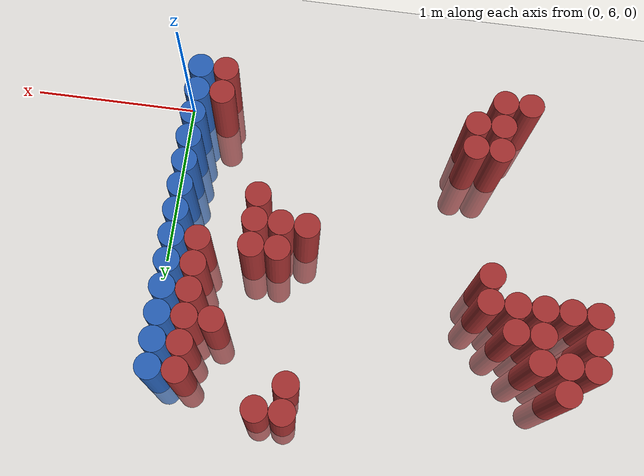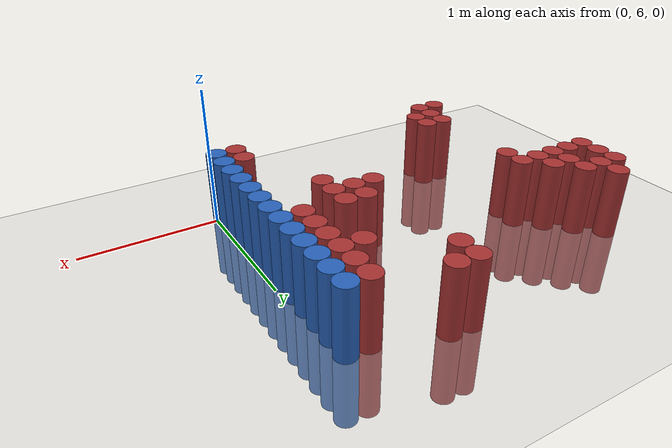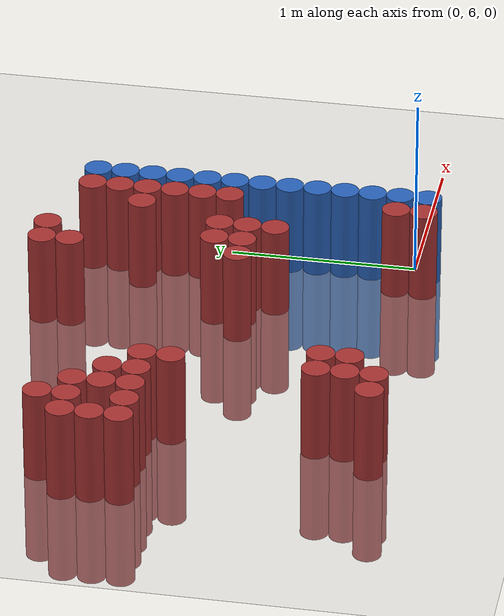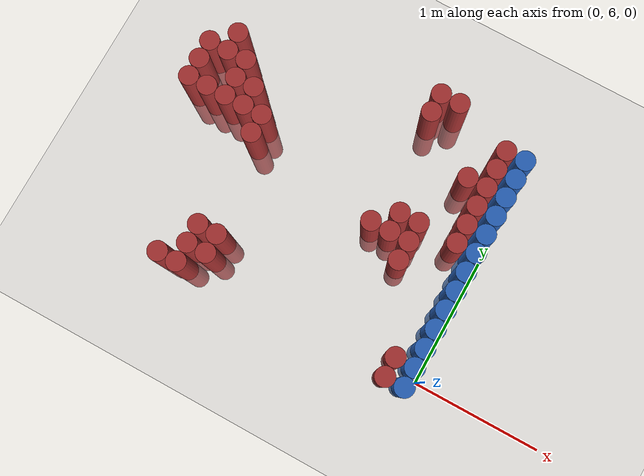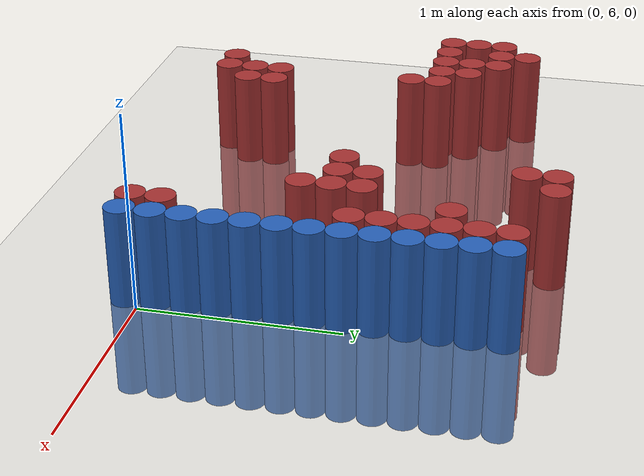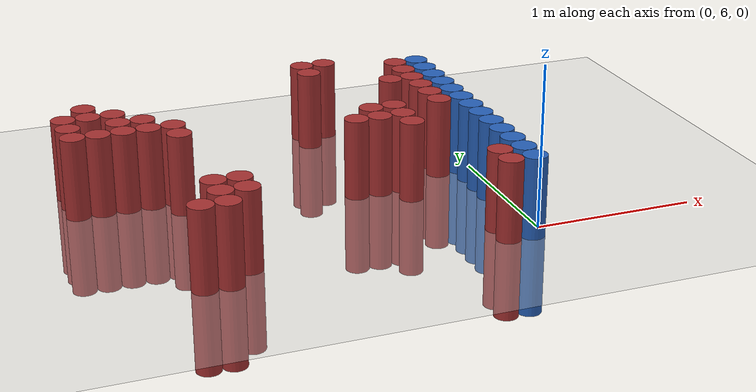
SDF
<sdf version="1.6">
 <world name="default">
  <model name="ground_plane">
   <static>1</static>
   <link name="link">
    <collision name="collision">
     <geometry><plane><normal>0 0 1</normal><size>100 100</size></plane></geometry>
     <surface><friction><ode><mu>100</mu><mu2>50</mu2></ode></friction></surface>
    </collision>
    <visual name="visual">
     <cast_shadows>0</cast_shadows>
     <geometry><plane><normal>0 0 1</normal><size>100 100</size></plane></geometry>
     <material>
      <script><uri>file://media/materials/scripts/gazebo.material</uri><name>Gazebo/Grey</name></script>
     </material>
    </visual>
   </link>
  </model>
  <model name="unit_cylinder_231">
   <static>1</static>
   <pose>-2.475000 7.125000 0.000000 0.000000 0.000000 0.000000</pose>
   <link name="link">
    <inertial>
     <mass>1</mass>
     <inertia><ixx>0.145833</ixx><ixy>0</ixy><ixz>0</ixz><iyy>0.145833</iyy><iyz>0</iyz><izz>0.125</izz></inertia>
    </inertial>
    <collision name="collision">
     <geometry><cylinder><radius>0.075000</radius><length>1</length></cylinder></geometry>
    </collision>
    <visual name="visual">
     <geometry><cylinder><radius>0.075000</radius><length>1</length></cylinder></geometry>
     <material>
      <ambient>0.648000 0.192000 0.192000 1</ambient>
      <diffuse>0.648000 0.192000 0.192000 1</diffuse>
     </material>
     <material>
      <script><name>Gazebo/Grey</name><uri>file://media/materials/scripts/gazebo.material</uri></script>
     </material>
    </visual>
   </link>
  </model>
  <model name="unit_cylinder_232">
   <static>1</static>
   <pose>-2.475000 7.275000 0.000000 0.000000 0.000000 0.000000</pose>
   <link name="link">
    <inertial>
     <mass>1</mass>
     <inertia><ixx>0.145833</ixx><ixy>0</ixy><ixz>0</ixz><iyy>0.145833</iyy><iyz>0</iyz><izz>0.125</izz></inertia>
    </inertial>
    <collision name="collision">
     <geometry><cylinder><radius>0.075000</radius><length>1</length></cylinder></geometry>
    </collision>
    <visual name="visual">
     <geometry><cylinder><radius>0.075000</radius><length>1</length></cylinder></geometry>
     <material>
      <ambient>0.648000 0.192000 0.192000 1</ambient>
      <diffuse>0.648000 0.192000 0.192000 1</diffuse>
     </material>
     <material>
      <script><name>Gazebo/Grey</name><uri>file://media/materials/scripts/gazebo.material</uri></script>
     </material>
    </visual>
   </link>
  </model>
  <model name="unit_cylinder_233">
   <static>1</static>
   <pose>-2.475000 7.425000 0.000000 0.000000 0.000000 0.000000</pose>
   <link name="link">
    <inertial>
     <mass>1</mass>
     <inertia><ixx>0.145833</ixx><ixy>0</ixy><ixz>0</ixz><iyy>0.145833</iyy><iyz>0</iyz><izz>0.125</izz></inertia>
    </inertial>
    <collision name="collision">
     <geometry><cylinder><radius>0.075000</radius><length>1</length></cylinder></geometry>
    </collision>
    <visual name="visual">
     <geometry><cylinder><radius>0.075000</radius><length>1</length></cylinder></geometry>
     <material>
      <ambient>0.648000 0.192000 0.192000 1</ambient>
      <diffuse>0.648000 0.192000 0.192000 1</diffuse>
     </material>
     <material>
      <script><name>Gazebo/Grey</name><uri>file://media/materials/scripts/gazebo.material</uri></script>
     </material>
    </visual>
   </link>
  </model>
  <model name="unit_cylinder_238">
   <static>1</static>
   <pose>-2.325000 7.125000 0.000000 0.000000 0.000000 0.000000</pose>
   <link name="link">
    <inertial>
     <mass>1</mass>
     <inertia><ixx>0.145833</ixx><ixy>0</ixy><ixz>0</ixz><iyy>0.145833</iyy><iyz>0</iyz><izz>0.125</izz></inertia>
    </inertial>
    <collision name="collision">
     <geometry><cylinder><radius>0.075000</radius><length>1</length></cylinder></geometry>
    </collision>
    <visual name="visual">
     <geometry><cylinder><radius>0.075000</radius><length>1</length></cylinder></geometry>
     <material>
      <ambient>0.648000 0.192000 0.192000 1</ambient>
      <diffuse>0.648000 0.192000 0.192000 1</diffuse>
     </material>
     <material>
      <script><name>Gazebo/Grey</name><uri>file://media/materials/scripts/gazebo.material</uri></script>
     </material>
    </visual>
   </link>
  </model>
  <model name="unit_cylinder_239">
   <static>1</static>
   <pose>-2.325000 7.425000 0.000000 0.000000 0.000000 0.000000</pose>
   <link name="link">
    <inertial>
     <mass>1</mass>
     <inertia><ixx>0.145833</ixx><ixy>0</ixy><ixz>0</ixz><iyy>0.145833</iyy><iyz>0</iyz><izz>0.125</izz></inertia>
    </inertial>
    <collision name="collision">
     <geometry><cylinder><radius>0.075000</radius><length>1</length></cylinder></geometry>
    </collision>
    <visual name="visual">
     <geometry><cylinder><radius>0.075000</radius><length>1</length></cylinder></geometry>
     <material>
      <ambient>0.648000 0.192000 0.192000 1</ambient>
      <diffuse>0.648000 0.192000 0.192000 1</diffuse>
     </material>
     <material>
      <script><name>Gazebo/Grey</name><uri>file://media/materials/scripts/gazebo.material</uri></script>
     </material>
    </visual>
   </link>
  </model>
  <model name="unit_cylinder_240">
   <static>1</static>
   <pose>-2.325000 7.575000 0.000000 0.000000 0.000000 0.000000</pose>
   <link name="link">
    <inertial>
     <mass>1</mass>
     <inertia><ixx>0.145833</ixx><ixy>0</ixy><ixz>0</ixz><iyy>0.145833</iyy><iyz>0</iyz><izz>0.125</izz></inertia>
    </inertial>
    <collision name="collision">
     <geometry><cylinder><radius>0.075000</radius><length>1</length></cylinder></geometry>
    </collision>
    <visual name="visual">
     <geometry><cylinder><radius>0.075000</radius><length>1</length></cylinder></geometry>
     <material>
      <ambient>0.648000 0.192000 0.192000 1</ambient>
      <diffuse>0.648000 0.192000 0.192000 1</diffuse>
     </material>
     <material>
      <script><name>Gazebo/Grey</name><uri>file://media/materials/scripts/gazebo.material</uri></script>
     </material>
    </visual>
   </link>
  </model>
  <model name="unit_cylinder_245">
   <static>1</static>
   <pose>-2.175000 7.125000 0.000000 0.000000 0.000000 0.000000</pose>
   <link name="link">
    <inertial>
     <mass>1</mass>
     <inertia><ixx>0.145833</ixx><ixy>0</ixy><ixz>0</ixz><iyy>0.145833</iyy><iyz>0</iyz><izz>0.125</izz></inertia>
    </inertial>
    <collision name="collision">
     <geometry><cylinder><radius>0.075000</radius><length>1</length></cylinder></geometry>
    </collision>
    <visual name="visual">
     <geometry><cylinder><radius>0.075000</radius><length>1</length></cylinder></geometry>
     <material>
      <ambient>0.648000 0.192000 0.192000 1</ambient>
      <diffuse>0.648000 0.192000 0.192000 1</diffuse>
     </material>
     <material>
      <script><name>Gazebo/Grey</name><uri>file://media/materials/scripts/gazebo.material</uri></script>
     </material>
    </visual>
   </link>
  </model>
  <model name="unit_cylinder_246">
   <static>1</static>
   <pose>-2.175000 7.275000 0.000000 0.000000 0.000000 0.000000</pose>
   <link name="link">
    <inertial>
     <mass>1</mass>
     <inertia><ixx>0.145833</ixx><ixy>0</ixy><ixz>0</ixz><iyy>0.145833</iyy><iyz>0</iyz><izz>0.125</izz></inertia>
    </inertial>
    <collision name="collision">
     <geometry><cylinder><radius>0.075000</radius><length>1</length></cylinder></geometry>
    </collision>
    <visual name="visual">
     <geometry><cylinder><radius>0.075000</radius><length>1</length></cylinder></geometry>
     <material>
      <ambient>0.648000 0.192000 0.192000 1</ambient>
      <diffuse>0.648000 0.192000 0.192000 1</diffuse>
     </material>
     <material>
      <script><name>Gazebo/Grey</name><uri>file://media/materials/scripts/gazebo.material</uri></script>
     </material>
    </visual>
   </link>
  </model>
  <model name="unit_cylinder_247">
   <static>1</static>
   <pose>-2.175000 7.425000 0.000000 0.000000 0.000000 0.000000</pose>
   <link name="link">
    <inertial>
     <mass>1</mass>
     <inertia><ixx>0.145833</ixx><ixy>0</ixy><ixz>0</ixz><iyy>0.145833</iyy><iyz>0</iyz><izz>0.125</izz></inertia>
    </inertial>
    <collision name="collision">
     <geometry><cylinder><radius>0.075000</radius><length>1</length></cylinder></geometry>
    </collision>
    <visual name="visual">
     <geometry><cylinder><radius>0.075000</radius><length>1</length></cylinder></geometry>
     <material>
      <ambient>0.648000 0.192000 0.192000 1</ambient>
      <diffuse>0.648000 0.192000 0.192000 1</diffuse>
     </material>
     <material>
      <script><name>Gazebo/Grey</name><uri>file://media/materials/scripts/gazebo.material</uri></script>
     </material>
    </visual>
   </link>
  </model>
  <model name="unit_cylinder_253">
   <static>1</static>
   <pose>-2.025000 5.925000 0.000000 0.000000 0.000000 0.000000</pose>
   <link name="link">
    <inertial>
     <mass>1</mass>
     <inertia><ixx>0.145833</ixx><ixy>0</ixy><ixz>0</ixz><iyy>0.145833</iyy><iyz>0</iyz><izz>0.125</izz></inertia>
    </inertial>
    <collision name="collision">
     <geometry><cylinder><radius>0.075000</radius><length>1</length></cylinder></geometry>
    </collision>
    <visual name="visual">
     <geometry><cylinder><radius>0.075000</radius><length>1</length></cylinder></geometry>
     <material>
      <ambient>0.648000 0.192000 0.192000 1</ambient>
      <diffuse>0.648000 0.192000 0.192000 1</diffuse>
     </material>
     <material>
      <script><name>Gazebo/Grey</name><uri>file://media/materials/scripts/gazebo.material</uri></script>
     </material>
    </visual>
   </link>
  </model>
  <model name="unit_cylinder_254">
   <static>1</static>
   <pose>-2.025000 7.125000 0.000000 0.000000 0.000000 0.000000</pose>
   <link name="link">
    <inertial>
     <mass>1</mass>
     <inertia><ixx>0.145833</ixx><ixy>0</ixy><ixz>0</ixz><iyy>0.145833</iyy><iyz>0</iyz><izz>0.125</izz></inertia>
    </inertial>
    <collision name="collision">
     <geometry><cylinder><radius>0.075000</radius><length>1</length></cylinder></geometry>
    </collision>
    <visual name="visual">
     <geometry><cylinder><radius>0.075000</radius><length>1</length></cylinder></geometry>
     <material>
      <ambient>0.648000 0.192000 0.192000 1</ambient>
      <diffuse>0.648000 0.192000 0.192000 1</diffuse>
     </material>
     <material>
      <script><name>Gazebo/Grey</name><uri>file://media/materials/scripts/gazebo.material</uri></script>
     </material>
    </visual>
   </link>
  </model>
  <model name="unit_cylinder_255">
   <static>1</static>
   <pose>-2.025000 7.275000 0.000000 0.000000 0.000000 0.000000</pose>
   <link name="link">
    <inertial>
     <mass>1</mass>
     <inertia><ixx>0.145833</ixx><ixy>0</ixy><ixz>0</ixz><iyy>0.145833</iyy><iyz>0</iyz><izz>0.125</izz></inertia>
    </inertial>
    <collision name="collision">
     <geometry><cylinder><radius>0.075000</radius><length>1</length></cylinder></geometry>
    </collision>
    <visual name="visual">
     <geometry><cylinder><radius>0.075000</radius><length>1</length></cylinder></geometry>
     <material>
      <ambient>0.648000 0.192000 0.192000 1</ambient>
      <diffuse>0.648000 0.192000 0.192000 1</diffuse>
     </material>
     <material>
      <script><name>Gazebo/Grey</name><uri>file://media/materials/scripts/gazebo.material</uri></script>
     </material>
    </visual>
   </link>
  </model>
  <model name="unit_cylinder_262">
   <static>1</static>
   <pose>-1.875000 5.925000 0.000000 0.000000 0.000000 0.000000</pose>
   <link name="link">
    <inertial>
     <mass>1</mass>
     <inertia><ixx>0.145833</ixx><ixy>0</ixy><ixz>0</ixz><iyy>0.145833</iyy><iyz>0</iyz><izz>0.125</izz></inertia>
    </inertial>
    <collision name="collision">
     <geometry><cylinder><radius>0.075000</radius><length>1</length></cylinder></geometry>
    </collision>
    <visual name="visual">
     <geometry><cylinder><radius>0.075000</radius><length>1</length></cylinder></geometry>
     <material>
      <ambient>0.648000 0.192000 0.192000 1</ambient>
      <diffuse>0.648000 0.192000 0.192000 1</diffuse>
     </material>
     <material>
      <script><name>Gazebo/Grey</name><uri>file://media/materials/scripts/gazebo.material</uri></script>
     </material>
    </visual>
   </link>
  </model>
  <model name="unit_cylinder_263">
   <static>1</static>
   <pose>-1.875000 6.075000 0.000000 0.000000 0.000000 0.000000</pose>
   <link name="link">
    <inertial>
     <mass>1</mass>
     <inertia><ixx>0.145833</ixx><ixy>0</ixy><ixz>0</ixz><iyy>0.145833</iyy><iyz>0</iyz><izz>0.125</izz></inertia>
    </inertial>
    <collision name="collision">
     <geometry><cylinder><radius>0.075000</radius><length>1</length></cylinder></geometry>
    </collision>
    <visual name="visual">
     <geometry><cylinder><radius>0.075000</radius><length>1</length></cylinder></geometry>
     <material>
      <ambient>0.648000 0.192000 0.192000 1</ambient>
      <diffuse>0.648000 0.192000 0.192000 1</diffuse>
     </material>
     <material>
      <script><name>Gazebo/Grey</name><uri>file://media/materials/scripts/gazebo.material</uri></script>
     </material>
    </visual>
   </link>
  </model>
  <model name="unit_cylinder_264">
   <static>1</static>
   <pose>-1.875000 6.225000 0.000000 0.000000 0.000000 0.000000</pose>
   <link name="link">
    <inertial>
     <mass>1</mass>
     <inertia><ixx>0.145833</ixx><ixy>0</ixy><ixz>0</ixz><iyy>0.145833</iyy><iyz>0</iyz><izz>0.125</izz></inertia>
    </inertial>
    <collision name="collision">
     <geometry><cylinder><radius>0.075000</radius><length>1</length></cylinder></geometry>
    </collision>
    <visual name="visual">
     <geometry><cylinder><radius>0.075000</radius><length>1</length></cylinder></geometry>
     <material>
      <ambient>0.648000 0.192000 0.192000 1</ambient>
      <diffuse>0.648000 0.192000 0.192000 1</diffuse>
     </material>
     <material>
      <script><name>Gazebo/Grey</name><uri>file://media/materials/scripts/gazebo.material</uri></script>
     </material>
    </visual>
   </link>
  </model>
  <model name="unit_cylinder_265">
   <static>1</static>
   <pose>-1.875000 6.975000 0.000000 0.000000 0.000000 0.000000</pose>
   <link name="link">
    <inertial>
     <mass>1</mass>
     <inertia><ixx>0.145833</ixx><ixy>0</ixy><ixz>0</ixz><iyy>0.145833</iyy><iyz>0</iyz><izz>0.125</izz></inertia>
    </inertial>
    <collision name="collision">
     <geometry><cylinder><radius>0.075000</radius><length>1</length></cylinder></geometry>
    </collision>
    <visual name="visual">
     <geometry><cylinder><radius>0.075000</radius><length>1</length></cylinder></geometry>
     <material>
      <ambient>0.648000 0.192000 0.192000 1</ambient>
      <diffuse>0.648000 0.192000 0.192000 1</diffuse>
     </material>
     <material>
      <script><name>Gazebo/Grey</name><uri>file://media/materials/scripts/gazebo.material</uri></script>
     </material>
    </visual>
   </link>
  </model>
  <model name="unit_cylinder_266">
   <static>1</static>
   <pose>-1.875000 7.125000 0.000000 0.000000 0.000000 0.000000</pose>
   <link name="link">
    <inertial>
     <mass>1</mass>
     <inertia><ixx>0.145833</ixx><ixy>0</ixy><ixz>0</ixz><iyy>0.145833</iyy><iyz>0</iyz><izz>0.125</izz></inertia>
    </inertial>
    <collision name="collision">
     <geometry><cylinder><radius>0.075000</radius><length>1</length></cylinder></geometry>
    </collision>
    <visual name="visual">
     <geometry><cylinder><radius>0.075000</radius><length>1</length></cylinder></geometry>
     <material>
      <ambient>0.648000 0.192000 0.192000 1</ambient>
      <diffuse>0.648000 0.192000 0.192000 1</diffuse>
     </material>
     <material>
      <script><name>Gazebo/Grey</name><uri>file://media/materials/scripts/gazebo.material</uri></script>
     </material>
    </visual>
   </link>
  </model>
  <model name="unit_cylinder_272">
   <static>1</static>
   <pose>-1.725000 6.075000 0.000000 0.000000 0.000000 0.000000</pose>
   <link name="link">
    <inertial>
     <mass>1</mass>
     <inertia><ixx>0.145833</ixx><ixy>0</ixy><ixz>0</ixz><iyy>0.145833</iyy><iyz>0</iyz><izz>0.125</izz></inertia>
    </inertial>
    <collision name="collision">
     <geometry><cylinder><radius>0.075000</radius><length>1</length></cylinder></geometry>
    </collision>
    <visual name="visual">
     <geometry><cylinder><radius>0.075000</radius><length>1</length></cylinder></geometry>
     <material>
      <ambient>0.648000 0.192000 0.192000 1</ambient>
      <diffuse>0.648000 0.192000 0.192000 1</diffuse>
     </material>
     <material>
      <script><name>Gazebo/Grey</name><uri>file://media/materials/scripts/gazebo.material</uri></script>
     </material>
    </visual>
   </link>
  </model>
  <model name="unit_cylinder_273">
   <static>1</static>
   <pose>-1.725000 6.225000 0.000000 0.000000 0.000000 0.000000</pose>
   <link name="link">
    <inertial>
     <mass>1</mass>
     <inertia><ixx>0.145833</ixx><ixy>0</ixy><ixz>0</ixz><iyy>0.145833</iyy><iyz>0</iyz><izz>0.125</izz></inertia>
    </inertial>
    <collision name="collision">
     <geometry><cylinder><radius>0.075000</radius><length>1</length></cylinder></geometry>
    </collision>
    <visual name="visual">
     <geometry><cylinder><radius>0.075000</radius><length>1</length></cylinder></geometry>
     <material>
      <ambient>0.648000 0.192000 0.192000 1</ambient>
      <diffuse>0.648000 0.192000 0.192000 1</diffuse>
     </material>
     <material>
      <script><name>Gazebo/Grey</name><uri>file://media/materials/scripts/gazebo.material</uri></script>
     </material>
    </visual>
   </link>
  </model>
  <model name="unit_cylinder_277">
   <static>1</static>
   <pose>-0.825000 6.825000 0.000000 0.000000 0.000000 0.000000</pose>
   <link name="link">
    <inertial>
     <mass>1</mass>
     <inertia><ixx>0.145833</ixx><ixy>0</ixy><ixz>0</ixz><iyy>0.145833</iyy><iyz>0</iyz><izz>0.125</izz></inertia>
    </inertial>
    <collision name="collision">
     <geometry><cylinder><radius>0.075000</radius><length>1</length></cylinder></geometry>
    </collision>
    <visual name="visual">
     <geometry><cylinder><radius>0.075000</radius><length>1</length></cylinder></geometry>
     <material>
      <ambient>0.648000 0.192000 0.192000 1</ambient>
      <diffuse>0.648000 0.192000 0.192000 1</diffuse>
     </material>
     <material>
      <script><name>Gazebo/Grey</name><uri>file://media/materials/scripts/gazebo.material</uri></script>
     </material>
    </visual>
   </link>
  </model>
  <model name="unit_cylinder_278">
   <static>1</static>
   <pose>-0.825000 7.725000 0.000000 0.000000 0.000000 0.000000</pose>
   <link name="link">
    <inertial>
     <mass>1</mass>
     <inertia><ixx>0.145833</ixx><ixy>0</ixy><ixz>0</ixz><iyy>0.145833</iyy><iyz>0</iyz><izz>0.125</izz></inertia>
    </inertial>
    <collision name="collision">
     <geometry><cylinder><radius>0.075000</radius><length>1</length></cylinder></geometry>
    </collision>
    <visual name="visual">
     <geometry><cylinder><radius>0.075000</radius><length>1</length></cylinder></geometry>
     <material>
      <ambient>0.648000 0.192000 0.192000 1</ambient>
      <diffuse>0.648000 0.192000 0.192000 1</diffuse>
     </material>
     <material>
      <script><name>Gazebo/Grey</name><uri>file://media/materials/scripts/gazebo.material</uri></script>
     </material>
    </visual>
   </link>
  </model>
  <model name="unit_cylinder_279">
   <static>1</static>
   <pose>-0.825000 7.875000 0.000000 0.000000 0.000000 0.000000</pose>
   <link name="link">
    <inertial>
     <mass>1</mass>
     <inertia><ixx>0.145833</ixx><ixy>0</ixy><ixz>0</ixz><iyy>0.145833</iyy><iyz>0</iyz><izz>0.125</izz></inertia>
    </inertial>
    <collision name="collision">
     <geometry><cylinder><radius>0.075000</radius><length>1</length></cylinder></geometry>
    </collision>
    <visual name="visual">
     <geometry><cylinder><radius>0.075000</radius><length>1</length></cylinder></geometry>
     <material>
      <ambient>0.648000 0.192000 0.192000 1</ambient>
      <diffuse>0.648000 0.192000 0.192000 1</diffuse>
     </material>
     <material>
      <script><name>Gazebo/Grey</name><uri>file://media/materials/scripts/gazebo.material</uri></script>
     </material>
    </visual>
   </link>
  </model>
  <model name="unit_cylinder_280">
   <static>1</static>
   <pose>-0.675000 6.825000 0.000000 0.000000 0.000000 0.000000</pose>
   <link name="link">
    <inertial>
     <mass>1</mass>
     <inertia><ixx>0.145833</ixx><ixy>0</ixy><ixz>0</ixz><iyy>0.145833</iyy><iyz>0</iyz><izz>0.125</izz></inertia>
    </inertial>
    <collision name="collision">
     <geometry><cylinder><radius>0.075000</radius><length>1</length></cylinder></geometry>
    </collision>
    <visual name="visual">
     <geometry><cylinder><radius>0.075000</radius><length>1</length></cylinder></geometry>
     <material>
      <ambient>0.648000 0.192000 0.192000 1</ambient>
      <diffuse>0.648000 0.192000 0.192000 1</diffuse>
     </material>
     <material>
      <script><name>Gazebo/Grey</name><uri>file://media/materials/scripts/gazebo.material</uri></script>
     </material>
    </visual>
   </link>
  </model>
  <model name="unit_cylinder_281">
   <static>1</static>
   <pose>-0.675000 6.975000 0.000000 0.000000 0.000000 0.000000</pose>
   <link name="link">
    <inertial>
     <mass>1</mass>
     <inertia><ixx>0.145833</ixx><ixy>0</ixy><ixz>0</ixz><iyy>0.145833</iyy><iyz>0</iyz><izz>0.125</izz></inertia>
    </inertial>
    <collision name="collision">
     <geometry><cylinder><radius>0.075000</radius><length>1</length></cylinder></geometry>
    </collision>
    <visual name="visual">
     <geometry><cylinder><radius>0.075000</radius><length>1</length></cylinder></geometry>
     <material>
      <ambient>0.648000 0.192000 0.192000 1</ambient>
      <diffuse>0.648000 0.192000 0.192000 1</diffuse>
     </material>
     <material>
      <script><name>Gazebo/Grey</name><uri>file://media/materials/scripts/gazebo.material</uri></script>
     </material>
    </visual>
   </link>
  </model>
  <model name="unit_cylinder_282">
   <static>1</static>
   <pose>-0.675000 7.875000 0.000000 0.000000 0.000000 0.000000</pose>
   <link name="link">
    <inertial>
     <mass>1</mass>
     <inertia><ixx>0.145833</ixx><ixy>0</ixy><ixz>0</ixz><iyy>0.145833</iyy><iyz>0</iyz><izz>0.125</izz></inertia>
    </inertial>
    <collision name="collision">
     <geometry><cylinder><radius>0.075000</radius><length>1</length></cylinder></geometry>
    </collision>
    <visual name="visual">
     <geometry><cylinder><radius>0.075000</radius><length>1</length></cylinder></geometry>
     <material>
      <ambient>0.648000 0.192000 0.192000 1</ambient>
      <diffuse>0.648000 0.192000 0.192000 1</diffuse>
     </material>
     <material>
      <script><name>Gazebo/Grey</name><uri>file://media/materials/scripts/gazebo.material</uri></script>
     </material>
    </visual>
   </link>
  </model>
  <model name="unit_cylinder_285">
   <static>1</static>
   <pose>-0.525000 6.675000 0.000000 0.000000 0.000000 0.000000</pose>
   <link name="link">
    <inertial>
     <mass>1</mass>
     <inertia><ixx>0.145833</ixx><ixy>0</ixy><ixz>0</ixz><iyy>0.145833</iyy><iyz>0</iyz><izz>0.125</izz></inertia>
    </inertial>
    <collision name="collision">
     <geometry><cylinder><radius>0.075000</radius><length>1</length></cylinder></geometry>
    </collision>
    <visual name="visual">
     <geometry><cylinder><radius>0.075000</radius><length>1</length></cylinder></geometry>
     <material>
      <ambient>0.648000 0.192000 0.192000 1</ambient>
      <diffuse>0.648000 0.192000 0.192000 1</diffuse>
     </material>
     <material>
      <script><name>Gazebo/Grey</name><uri>file://media/materials/scripts/gazebo.material</uri></script>
     </material>
    </visual>
   </link>
  </model>
  <model name="unit_cylinder_286">
   <static>1</static>
   <pose>-0.525000 6.825000 0.000000 0.000000 0.000000 0.000000</pose>
   <link name="link">
    <inertial>
     <mass>1</mass>
     <inertia><ixx>0.145833</ixx><ixy>0</ixy><ixz>0</ixz><iyy>0.145833</iyy><iyz>0</iyz><izz>0.125</izz></inertia>
    </inertial>
    <collision name="collision">
     <geometry><cylinder><radius>0.075000</radius><length>1</length></cylinder></geometry>
    </collision>
    <visual name="visual">
     <geometry><cylinder><radius>0.075000</radius><length>1</length></cylinder></geometry>
     <material>
      <ambient>0.648000 0.192000 0.192000 1</ambient>
      <diffuse>0.648000 0.192000 0.192000 1</diffuse>
     </material>
     <material>
      <script><name>Gazebo/Grey</name><uri>file://media/materials/scripts/gazebo.material</uri></script>
     </material>
    </visual>
   </link>
  </model>
  <model name="unit_cylinder_287">
   <static>1</static>
   <pose>-0.525000 6.975000 0.000000 0.000000 0.000000 0.000000</pose>
   <link name="link">
    <inertial>
     <mass>1</mass>
     <inertia><ixx>0.145833</ixx><ixy>0</ixy><ixz>0</ixz><iyy>0.145833</iyy><iyz>0</iyz><izz>0.125</izz></inertia>
    </inertial>
    <collision name="collision">
     <geometry><cylinder><radius>0.075000</radius><length>1</length></cylinder></geometry>
    </collision>
    <visual name="visual">
     <geometry><cylinder><radius>0.075000</radius><length>1</length></cylinder></geometry>
     <material>
      <ambient>0.648000 0.192000 0.192000 1</ambient>
      <diffuse>0.648000 0.192000 0.192000 1</diffuse>
     </material>
     <material>
      <script><name>Gazebo/Grey</name><uri>file://media/materials/scripts/gazebo.material</uri></script>
     </material>
    </visual>
   </link>
  </model>
  <model name="unit_cylinder_295">
   <static>1</static>
   <pose>-0.375000 7.425000 0.000000 0.000000 0.000000 0.000000</pose>
   <link name="link">
    <inertial>
     <mass>1</mass>
     <inertia><ixx>0.145833</ixx><ixy>0</ixy><ixz>0</ixz><iyy>0.145833</iyy><iyz>0</iyz><izz>0.125</izz></inertia>
    </inertial>
    <collision name="collision">
     <geometry><cylinder><radius>0.075000</radius><length>1</length></cylinder></geometry>
    </collision>
    <visual name="visual">
     <geometry><cylinder><radius>0.075000</radius><length>1</length></cylinder></geometry>
     <material>
      <ambient>0.648000 0.192000 0.192000 1</ambient>
      <diffuse>0.648000 0.192000 0.192000 1</diffuse>
     </material>
     <material>
      <script><name>Gazebo/Grey</name><uri>file://media/materials/scripts/gazebo.material</uri></script>
     </material>
    </visual>
   </link>
  </model>
  <model name="unit_cylinder_306">
   <static>1</static>
   <pose>-0.225000 5.925000 0.000000 0.000000 0.000000 0.000000</pose>
   <link name="link">
    <inertial>
     <mass>1</mass>
     <inertia><ixx>0.145833</ixx><ixy>0</ixy><ixz>0</ixz><iyy>0.145833</iyy><iyz>0</iyz><izz>0.125</izz></inertia>
    </inertial>
    <collision name="collision">
     <geometry><cylinder><radius>0.075000</radius><length>1</length></cylinder></geometry>
    </collision>
    <visual name="visual">
     <geometry><cylinder><radius>0.075000</radius><length>1</length></cylinder></geometry>
     <material>
      <ambient>0.648000 0.192000 0.192000 1</ambient>
      <diffuse>0.648000 0.192000 0.192000 1</diffuse>
     </material>
     <material>
      <script><name>Gazebo/Grey</name><uri>file://media/materials/scripts/gazebo.material</uri></script>
     </material>
    </visual>
   </link>
  </model>
  <model name="unit_cylinder_307">
   <static>1</static>
   <pose>-0.225000 6.075000 0.000000 0.000000 0.000000 0.000000</pose>
   <link name="link">
    <inertial>
     <mass>1</mass>
     <inertia><ixx>0.145833</ixx><ixy>0</ixy><ixz>0</ixz><iyy>0.145833</iyy><iyz>0</iyz><izz>0.125</izz></inertia>
    </inertial>
    <collision name="collision">
     <geometry><cylinder><radius>0.075000</radius><length>1</length></cylinder></geometry>
    </collision>
    <visual name="visual">
     <geometry><cylinder><radius>0.075000</radius><length>1</length></cylinder></geometry>
     <material>
      <ambient>0.648000 0.192000 0.192000 1</ambient>
      <diffuse>0.648000 0.192000 0.192000 1</diffuse>
     </material>
     <material>
      <script><name>Gazebo/Grey</name><uri>file://media/materials/scripts/gazebo.material</uri></script>
     </material>
    </visual>
   </link>
  </model>
  <model name="unit_cylinder_308">
   <static>1</static>
   <pose>-0.225000 6.975000 0.000000 0.000000 0.000000 0.000000</pose>
   <link name="link">
    <inertial>
     <mass>1</mass>
     <inertia><ixx>0.145833</ixx><ixy>0</ixy><ixz>0</ixz><iyy>0.145833</iyy><iyz>0</iyz><izz>0.125</izz></inertia>
    </inertial>
    <collision name="collision">
     <geometry><cylinder><radius>0.075000</radius><length>1</length></cylinder></geometry>
    </collision>
    <visual name="visual">
     <geometry><cylinder><radius>0.075000</radius><length>1</length></cylinder></geometry>
     <material>
      <ambient>0.648000 0.192000 0.192000 1</ambient>
      <diffuse>0.648000 0.192000 0.192000 1</diffuse>
     </material>
     <material>
      <script><name>Gazebo/Grey</name><uri>file://media/materials/scripts/gazebo.material</uri></script>
     </material>
    </visual>
   </link>
  </model>
  <model name="unit_cylinder_309">
   <static>1</static>
   <pose>-0.225000 7.125000 0.000000 0.000000 0.000000 0.000000</pose>
   <link name="link">
    <inertial>
     <mass>1</mass>
     <inertia><ixx>0.145833</ixx><ixy>0</ixy><ixz>0</ixz><iyy>0.145833</iyy><iyz>0</iyz><izz>0.125</izz></inertia>
    </inertial>
    <collision name="collision">
     <geometry><cylinder><radius>0.075000</radius><length>1</length></cylinder></geometry>
    </collision>
    <visual name="visual">
     <geometry><cylinder><radius>0.075000</radius><length>1</length></cylinder></geometry>
     <material>
      <ambient>0.648000 0.192000 0.192000 1</ambient>
      <diffuse>0.648000 0.192000 0.192000 1</diffuse>
     </material>
     <material>
      <script><name>Gazebo/Grey</name><uri>file://media/materials/scripts/gazebo.material</uri></script>
     </material>
    </visual>
   </link>
  </model>
  <model name="unit_cylinder_310">
   <static>1</static>
   <pose>-0.225000 7.275000 0.000000 0.000000 0.000000 0.000000</pose>
   <link name="link">
    <inertial>
     <mass>1</mass>
     <inertia><ixx>0.145833</ixx><ixy>0</ixy><ixz>0</ixz><iyy>0.145833</iyy><iyz>0</iyz><izz>0.125</izz></inertia>
    </inertial>
    <collision name="collision">
     <geometry><cylinder><radius>0.075000</radius><length>1</length></cylinder></geometry>
    </collision>
    <visual name="visual">
     <geometry><cylinder><radius>0.075000</radius><length>1</length></cylinder></geometry>
     <material>
      <ambient>0.648000 0.192000 0.192000 1</ambient>
      <diffuse>0.648000 0.192000 0.192000 1</diffuse>
     </material>
     <material>
      <script><name>Gazebo/Grey</name><uri>file://media/materials/scripts/gazebo.material</uri></script>
     </material>
    </visual>
   </link>
  </model>
  <model name="unit_cylinder_311">
   <static>1</static>
   <pose>-0.225000 7.425000 0.000000 0.000000 0.000000 0.000000</pose>
   <link name="link">
    <inertial>
     <mass>1</mass>
     <inertia><ixx>0.145833</ixx><ixy>0</ixy><ixz>0</ixz><iyy>0.145833</iyy><iyz>0</iyz><izz>0.125</izz></inertia>
    </inertial>
    <collision name="collision">
     <geometry><cylinder><radius>0.075000</radius><length>1</length></cylinder></geometry>
    </collision>
    <visual name="visual">
     <geometry><cylinder><radius>0.075000</radius><length>1</length></cylinder></geometry>
     <material>
      <ambient>0.648000 0.192000 0.192000 1</ambient>
      <diffuse>0.648000 0.192000 0.192000 1</diffuse>
     </material>
     <material>
      <script><name>Gazebo/Grey</name><uri>file://media/materials/scripts/gazebo.material</uri></script>
     </material>
    </visual>
   </link>
  </model>
  <model name="unit_cylinder_312">
   <static>1</static>
   <pose>-0.225000 7.575000 0.000000 0.000000 0.000000 0.000000</pose>
   <link name="link">
    <inertial>
     <mass>1</mass>
     <inertia><ixx>0.145833</ixx><ixy>0</ixy><ixz>0</ixz><iyy>0.145833</iyy><iyz>0</iyz><izz>0.125</izz></inertia>
    </inertial>
    <collision name="collision">
     <geometry><cylinder><radius>0.075000</radius><length>1</length></cylinder></geometry>
    </collision>
    <visual name="visual">
     <geometry><cylinder><radius>0.075000</radius><length>1</length></cylinder></geometry>
     <material>
      <ambient>0.648000 0.192000 0.192000 1</ambient>
      <diffuse>0.648000 0.192000 0.192000 1</diffuse>
     </material>
     <material>
      <script><name>Gazebo/Grey</name><uri>file://media/materials/scripts/gazebo.material</uri></script>
     </material>
    </visual>
   </link>
  </model>
  <model name="unit_cylinder_313">
   <static>1</static>
   <pose>-0.225000 7.725000 0.000000 0.000000 0.000000 0.000000</pose>
   <link name="link">
    <inertial>
     <mass>1</mass>
     <inertia><ixx>0.145833</ixx><ixy>0</ixy><ixz>0</ixz><iyy>0.145833</iyy><iyz>0</iyz><izz>0.125</izz></inertia>
    </inertial>
    <collision name="collision">
     <geometry><cylinder><radius>0.075000</radius><length>1</length></cylinder></geometry>
    </collision>
    <visual name="visual">
     <geometry><cylinder><radius>0.075000</radius><length>1</length></cylinder></geometry>
     <material>
      <ambient>0.648000 0.192000 0.192000 1</ambient>
      <diffuse>0.648000 0.192000 0.192000 1</diffuse>
     </material>
     <material>
      <script><name>Gazebo/Grey</name><uri>file://media/materials/scripts/gazebo.material</uri></script>
     </material>
    </visual>
   </link>
  </model>
  <model name="unit_cylinder_325">
   <static>1</static>
   <pose>-0.075000 5.925000 0.000000 0.000000 0.000000 0.000000</pose>
   <link name="link">
    <inertial>
     <mass>1</mass>
     <inertia><ixx>0.145833</ixx><ixy>0</ixy><ixz>0</ixz><iyy>0.145833</iyy><iyz>0</iyz><izz>0.125</izz></inertia>
    </inertial>
    <collision name="collision">
     <geometry><cylinder><radius>0.075000</radius><length>1</length></cylinder></geometry>
    </collision>
    <visual name="visual">
     <geometry><cylinder><radius>0.075000</radius><length>1</length></cylinder></geometry>
     <material>
      <ambient>0.152000 0.379000 0.720000 1</ambient>
      <diffuse>0.152000 0.379000 0.720000 1</diffuse>
     </material>
     <material>
      <script><name>Gazebo/Grey</name><uri>file://media/materials/scripts/gazebo.material</uri></script>
     </material>
    </visual>
   </link>
  </model>
  <model name="unit_cylinder_326">
   <static>1</static>
   <pose>-0.075000 6.075000 0.000000 0.000000 0.000000 0.000000</pose>
   <link name="link">
    <inertial>
     <mass>1</mass>
     <inertia><ixx>0.145833</ixx><ixy>0</ixy><ixz>0</ixz><iyy>0.145833</iyy><iyz>0</iyz><izz>0.125</izz></inertia>
    </inertial>
    <collision name="collision">
     <geometry><cylinder><radius>0.075000</radius><length>1</length></cylinder></geometry>
    </collision>
    <visual name="visual">
     <geometry><cylinder><radius>0.075000</radius><length>1</length></cylinder></geometry>
     <material>
      <ambient>0.152000 0.379000 0.720000 1</ambient>
      <diffuse>0.152000 0.379000 0.720000 1</diffuse>
     </material>
     <material>
      <script><name>Gazebo/Grey</name><uri>file://media/materials/scripts/gazebo.material</uri></script>
     </material>
    </visual>
   </link>
  </model>
  <model name="unit_cylinder_327">
   <static>1</static>
   <pose>-0.075000 6.225000 0.000000 0.000000 0.000000 0.000000</pose>
   <link name="link">
    <inertial>
     <mass>1</mass>
     <inertia><ixx>0.145833</ixx><ixy>0</ixy><ixz>0</ixz><iyy>0.145833</iyy><iyz>0</iyz><izz>0.125</izz></inertia>
    </inertial>
    <collision name="collision">
     <geometry><cylinder><radius>0.075000</radius><length>1</length></cylinder></geometry>
    </collision>
    <visual name="visual">
     <geometry><cylinder><radius>0.075000</radius><length>1</length></cylinder></geometry>
     <material>
      <ambient>0.152000 0.379000 0.720000 1</ambient>
      <diffuse>0.152000 0.379000 0.720000 1</diffuse>
     </material>
     <material>
      <script><name>Gazebo/Grey</name><uri>file://media/materials/scripts/gazebo.material</uri></script>
     </material>
    </visual>
   </link>
  </model>
  <model name="unit_cylinder_328">
   <static>1</static>
   <pose>-0.075000 6.375000 0.000000 0.000000 0.000000 0.000000</pose>
   <link name="link">
    <inertial>
     <mass>1</mass>
     <inertia><ixx>0.145833</ixx><ixy>0</ixy><ixz>0</ixz><iyy>0.145833</iyy><iyz>0</iyz><izz>0.125</izz></inertia>
    </inertial>
    <collision name="collision">
     <geometry><cylinder><radius>0.075000</radius><length>1</length></cylinder></geometry>
    </collision>
    <visual name="visual">
     <geometry><cylinder><radius>0.075000</radius><length>1</length></cylinder></geometry>
     <material>
      <ambient>0.152000 0.379000 0.720000 1</ambient>
      <diffuse>0.152000 0.379000 0.720000 1</diffuse>
     </material>
     <material>
      <script><name>Gazebo/Grey</name><uri>file://media/materials/scripts/gazebo.material</uri></script>
     </material>
    </visual>
   </link>
  </model>
  <model name="unit_cylinder_329">
   <static>1</static>
   <pose>-0.075000 6.525000 0.000000 0.000000 0.000000 0.000000</pose>
   <link name="link">
    <inertial>
     <mass>1</mass>
     <inertia><ixx>0.145833</ixx><ixy>0</ixy><ixz>0</ixz><iyy>0.145833</iyy><iyz>0</iyz><izz>0.125</izz></inertia>
    </inertial>
    <collision name="collision">
     <geometry><cylinder><radius>0.075000</radius><length>1</length></cylinder></geometry>
    </collision>
    <visual name="visual">
     <geometry><cylinder><radius>0.075000</radius><length>1</length></cylinder></geometry>
     <material>
      <ambient>0.152000 0.379000 0.720000 1</ambient>
      <diffuse>0.152000 0.379000 0.720000 1</diffuse>
     </material>
     <material>
      <script><name>Gazebo/Grey</name><uri>file://media/materials/scripts/gazebo.material</uri></script>
     </material>
    </visual>
   </link>
  </model>
  <model name="unit_cylinder_330">
   <static>1</static>
   <pose>-0.075000 6.675000 0.000000 0.000000 0.000000 0.000000</pose>
   <link name="link">
    <inertial>
     <mass>1</mass>
     <inertia><ixx>0.145833</ixx><ixy>0</ixy><ixz>0</ixz><iyy>0.145833</iyy><iyz>0</iyz><izz>0.125</izz></inertia>
    </inertial>
    <collision name="collision">
     <geometry><cylinder><radius>0.075000</radius><length>1</length></cylinder></geometry>
    </collision>
    <visual name="visual">
     <geometry><cylinder><radius>0.075000</radius><length>1</length></cylinder></geometry>
     <material>
      <ambient>0.152000 0.379000 0.720000 1</ambient>
      <diffuse>0.152000 0.379000 0.720000 1</diffuse>
     </material>
     <material>
      <script><name>Gazebo/Grey</name><uri>file://media/materials/scripts/gazebo.material</uri></script>
     </material>
    </visual>
   </link>
  </model>
  <model name="unit_cylinder_331">
   <static>1</static>
   <pose>-0.075000 6.825000 0.000000 0.000000 0.000000 0.000000</pose>
   <link name="link">
    <inertial>
     <mass>1</mass>
     <inertia><ixx>0.145833</ixx><ixy>0</ixy><ixz>0</ixz><iyy>0.145833</iyy><iyz>0</iyz><izz>0.125</izz></inertia>
    </inertial>
    <collision name="collision">
     <geometry><cylinder><radius>0.075000</radius><length>1</length></cylinder></geometry>
    </collision>
    <visual name="visual">
     <geometry><cylinder><radius>0.075000</radius><length>1</length></cylinder></geometry>
     <material>
      <ambient>0.152000 0.379000 0.720000 1</ambient>
      <diffuse>0.152000 0.379000 0.720000 1</diffuse>
     </material>
     <material>
      <script><name>Gazebo/Grey</name><uri>file://media/materials/scripts/gazebo.material</uri></script>
     </material>
    </visual>
   </link>
  </model>
  <model name="unit_cylinder_332">
   <static>1</static>
   <pose>-0.075000 6.975000 0.000000 0.000000 0.000000 0.000000</pose>
   <link name="link">
    <inertial>
     <mass>1</mass>
     <inertia><ixx>0.145833</ixx><ixy>0</ixy><ixz>0</ixz><iyy>0.145833</iyy><iyz>0</iyz><izz>0.125</izz></inertia>
    </inertial>
    <collision name="collision">
     <geometry><cylinder><radius>0.075000</radius><length>1</length></cylinder></geometry>
    </collision>
    <visual name="visual">
     <geometry><cylinder><radius>0.075000</radius><length>1</length></cylinder></geometry>
     <material>
      <ambient>0.152000 0.379000 0.720000 1</ambient>
      <diffuse>0.152000 0.379000 0.720000 1</diffuse>
     </material>
     <material>
      <script><name>Gazebo/Grey</name><uri>file://media/materials/scripts/gazebo.material</uri></script>
     </material>
    </visual>
   </link>
  </model>
  <model name="unit_cylinder_333">
   <static>1</static>
   <pose>-0.075000 7.125000 0.000000 0.000000 0.000000 0.000000</pose>
   <link name="link">
    <inertial>
     <mass>1</mass>
     <inertia><ixx>0.145833</ixx><ixy>0</ixy><ixz>0</ixz><iyy>0.145833</iyy><iyz>0</iyz><izz>0.125</izz></inertia>
    </inertial>
    <collision name="collision">
     <geometry><cylinder><radius>0.075000</radius><length>1</length></cylinder></geometry>
    </collision>
    <visual name="visual">
     <geometry><cylinder><radius>0.075000</radius><length>1</length></cylinder></geometry>
     <material>
      <ambient>0.152000 0.379000 0.720000 1</ambient>
      <diffuse>0.152000 0.379000 0.720000 1</diffuse>
     </material>
     <material>
      <script><name>Gazebo/Grey</name><uri>file://media/materials/scripts/gazebo.material</uri></script>
     </material>
    </visual>
   </link>
  </model>
  <model name="unit_cylinder_334">
   <static>1</static>
   <pose>-0.075000 7.275000 0.000000 0.000000 0.000000 0.000000</pose>
   <link name="link">
    <inertial>
     <mass>1</mass>
     <inertia><ixx>0.145833</ixx><ixy>0</ixy><ixz>0</ixz><iyy>0.145833</iyy><iyz>0</iyz><izz>0.125</izz></inertia>
    </inertial>
    <collision name="collision">
     <geometry><cylinder><radius>0.075000</radius><length>1</length></cylinder></geometry>
    </collision>
    <visual name="visual">
     <geometry><cylinder><radius>0.075000</radius><length>1</length></cylinder></geometry>
     <material>
      <ambient>0.152000 0.379000 0.720000 1</ambient>
      <diffuse>0.152000 0.379000 0.720000 1</diffuse>
     </material>
     <material>
      <script><name>Gazebo/Grey</name><uri>file://media/materials/scripts/gazebo.material</uri></script>
     </material>
    </visual>
   </link>
  </model>
  <model name="unit_cylinder_335">
   <static>1</static>
   <pose>-0.075000 7.425000 0.000000 0.000000 0.000000 0.000000</pose>
   <link name="link">
    <inertial>
     <mass>1</mass>
     <inertia><ixx>0.145833</ixx><ixy>0</ixy><ixz>0</ixz><iyy>0.145833</iyy><iyz>0</iyz><izz>0.125</izz></inertia>
    </inertial>
    <collision name="collision">
     <geometry><cylinder><radius>0.075000</radius><length>1</length></cylinder></geometry>
    </collision>
    <visual name="visual">
     <geometry><cylinder><radius>0.075000</radius><length>1</length></cylinder></geometry>
     <material>
      <ambient>0.152000 0.379000 0.720000 1</ambient>
      <diffuse>0.152000 0.379000 0.720000 1</diffuse>
     </material>
     <material>
      <script><name>Gazebo/Grey</name><uri>file://media/materials/scripts/gazebo.material</uri></script>
     </material>
    </visual>
   </link>
  </model>
  <model name="unit_cylinder_336">
   <static>1</static>
   <pose>-0.075000 7.575000 0.000000 0.000000 0.000000 0.000000</pose>
   <link name="link">
    <inertial>
     <mass>1</mass>
     <inertia><ixx>0.145833</ixx><ixy>0</ixy><ixz>0</ixz><iyy>0.145833</iyy><iyz>0</iyz><izz>0.125</izz></inertia>
    </inertial>
    <collision name="collision">
     <geometry><cylinder><radius>0.075000</radius><length>1</length></cylinder></geometry>
    </collision>
    <visual name="visual">
     <geometry><cylinder><radius>0.075000</radius><length>1</length></cylinder></geometry>
     <material>
      <ambient>0.152000 0.379000 0.720000 1</ambient>
      <diffuse>0.152000 0.379000 0.720000 1</diffuse>
     </material>
     <material>
      <script><name>Gazebo/Grey</name><uri>file://media/materials/scripts/gazebo.material</uri></script>
     </material>
    </visual>
   </link>
  </model>
  <model name="unit_cylinder_337">
   <static>1</static>
   <pose>-0.075000 7.725000 0.000000 0.000000 0.000000 0.000000</pose>
   <link name="link">
    <inertial>
     <mass>1</mass>
     <inertia><ixx>0.145833</ixx><ixy>0</ixy><ixz>0</ixz><iyy>0.145833</iyy><iyz>0</iyz><izz>0.125</izz></inertia>
    </inertial>
    <collision name="collision">
     <geometry><cylinder><radius>0.075000</radius><length>1</length></cylinder></geometry>
    </collision>
    <visual name="visual">
     <geometry><cylinder><radius>0.075000</radius><length>1</length></cylinder></geometry>
     <material>
      <ambient>0.152000 0.379000 0.720000 1</ambient>
      <diffuse>0.152000 0.379000 0.720000 1</diffuse>
     </material>
     <material>
      <script><name>Gazebo/Grey</name><uri>file://media/materials/scripts/gazebo.material</uri></script>
     </material>
    </visual>
   </link>
  </model>
 </world>
</sdf>
